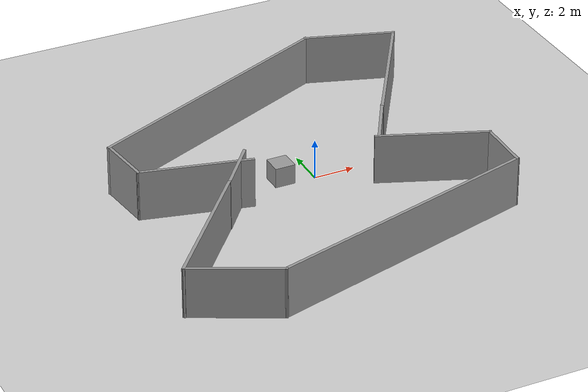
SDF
<sdf version="1.7">
 <world name="__default__">
  <gravity>0 0 -9.8</gravity>
  <magnetic_field>6e-06 2.3e-05 -4.2e-05</magnetic_field>
  <atmosphere type="adiabatic"/>
  <physics type="ode">
   <max_step_size>0.001</max_step_size>
   <real_time_factor>1</real_time_factor>
   <real_time_update_rate>1000</real_time_update_rate>
  </physics>
  <scene><ambient>0.4 0.4 0.4 1</ambient><background>0.7 0.7 0.7 1</background><shadows>1</shadows></scene>
  <audio><device>default</device></audio>
  <spherical_coordinates>
   <surface_model>EARTH_WGS84</surface_model>
   <latitude_deg>0</latitude_deg>
   <longitude_deg>0</longitude_deg>
   <elevation>0</elevation>
   <heading_deg>0</heading_deg>
  </spherical_coordinates>
  <model name="ground_plane">
   <static>1</static>
   <link name="link">
    <collision name="collision">
     <geometry><plane><normal>0 0 1</normal><size>100 100</size></plane></geometry>
     <surface>
      <contact><collide_bitmask>65535</collide_bitmask></contact>
      <friction><ode><mu>100</mu><mu2>50</mu2></ode></friction>
     </surface>
    </collision>
    <visual name="visual">
     <cast_shadows>0</cast_shadows>
     <geometry><plane><normal>0 0 1</normal><size>100 100</size></plane></geometry>
     <material>
      <script><uri>file://media/materials/scripts/gazebo.material</uri><name>Gazebo/Grey</name></script>
     </material>
    </visual>
   </link>
   <pose>-1.09019 -0.33971 0 0 -0 0</pose>
  </model>
  <light name="sun" type="directional">
   <pose>2.92909 -0.116151 10 0 -0 0</pose>
   <diffuse>0.8 0.8 0.8 1</diffuse>
   <specular>0.2 0.2 0.2 1</specular>
   <attenuation>
    <range>1000</range>
    <constant>0.9</constant>
    <linear>0.01</linear>
    <quadratic>0.001</quadratic>
   </attenuation>
   <direction>-0.5 0.1 -0.9</direction>
  </light>
  <model name="map_for_drone">
   <pose>-0.647048 3.44901 0 0 -0 0</pose>
   <link name="Wall_2">
    <collision name="Wall_2_Collision">
     <geometry><box><size>14.15 0.15 2.5</size></box></geometry>
     <pose>0 0 1.25 0 -0 0</pose>
    </collision>
    <visual name="Wall_2_Visual">
     <pose>0 0 1.25 0 -0 0</pose>
     <geometry><box><size>14.15 0.15 2.5</size></box></geometry>
     <material>
      <script><uri>file://media/materials/scripts/gazebo.material</uri><name>Gazebo/Grey</name></script>
      <ambient>1 1 1 1</ambient>
     </material>
     <meta><layer>0</layer></meta>
    </visual>
    <pose>-2.08038 2.21455 0 0 -0 0.41658</pose>
   </link>
   <link name="Wall_3">
    <collision name="Wall_3_Collision">
     <geometry><box><size>4.51692 0.15 2.5</size></box></geometry>
     <pose>0 0 1.25 0 -0 0</pose>
    </collision>
    <visual name="Wall_3_Visual">
     <pose>0 0 1.25 0 -0 0</pose>
     <geometry><box><size>4.51692 0.15 2.5</size></box></geometry>
     <material>
      <script><uri>file://media/materials/scripts/gazebo.material</uri><name>Gazebo/Grey</name></script>
      <ambient>1 1 1 1</ambient>
     </material>
     <meta><layer>0</layer></meta>
    </visual>
    <pose>6.38175 4.37744 0 0 -0 -0.311675</pose>
   </link>
   <link name="Wall_4">
    <collision name="Wall_4_Collision">
     <geometry><box><size>7.5255 0.15 2.5</size></box></geometry>
     <pose>0 0 1.25 0 -0 0</pose>
    </collision>
    <visual name="Wall_4_Visual">
     <pose>0 0 1.25 0 -0 0</pose>
     <geometry><box><size>7.5255 0.15 2.5</size></box></geometry>
     <material>
      <script><uri>file://media/materials/scripts/gazebo.material</uri><name>Gazebo/Grey</name></script>
      <ambient>1 1 1 1</ambient>
     </material>
     <meta><layer>0</layer></meta>
    </visual>
    <pose>6.54621 0.56628 0 0 -0 -2.12199</pose>
   </link>
   <link name="Wall_5">
    <collision name="Wall_5_Collision">
     <geometry><box><size>3 0.15 2.5</size></box></geometry>
     <pose>0 0 1.25 0 -0 0</pose>
    </collision>
    <visual name="Wall_5_Visual">
     <pose>0 0 1.25 0 -0 0</pose>
     <geometry><box><size>3 0.15 2.5</size></box></geometry>
     <material>
      <script><uri>file://media/materials/scripts/gazebo.material</uri><name>Gazebo/Grey</name></script>
      <ambient>1 1 1 1</ambient>
     </material>
     <meta><layer>0</layer></meta>
    </visual>
    <pose>3.87928 -3.8094 0 0 -0 -2.0944</pose>
   </link>
   <link name="Wall_7">
    <collision name="Wall_7_Collision">
     <geometry><box><size>2.80668 0.15 2.5</size></box></geometry>
     <pose>0 0 1.25 0 -0 0</pose>
    </collision>
    <visual name="Wall_7_Visual">
     <pose>0 0 1.25 0 -0 0</pose>
     <geometry><box><size>2.80668 0.15 2.5</size></box></geometry>
     <material>
      <script><uri>file://media/materials/scripts/gazebo.material</uri><name>Gazebo/Grey</name></script>
      <ambient>1 1 1 1</ambient>
     </material>
     <meta><layer>0</layer></meta>
    </visual>
    <pose>-8.31182 -1.93747 0 0 -0 -1.45579</pose>
   </link>
   <link name="Wall_8">
    <collision name="Wall_8_Collision">
     <geometry><box><size>5.46153 0.15 2.5</size></box></geometry>
     <pose>0 0 1.25 0 -0 0</pose>
    </collision>
    <visual name="Wall_8_Visual">
     <pose>0 0 1.25 0 -0 0</pose>
     <geometry><box><size>5.46153 0.15 2.5</size></box></geometry>
     <material>
      <script><uri>file://media/materials/scripts/gazebo.material</uri><name>Gazebo/Grey</name></script>
      <ambient>1 1 1 1</ambient>
     </material>
     <meta><layer>0</layer></meta>
    </visual>
    <pose>-5.59016 -3.85864 0 0 -0 -0.228511</pose>
   </link>
   <static>1</static>
  </model>
  <model name="map_for_drone_0">
   <pose>-1.27897 -5.58268 0 0 -0 2.99551</pose>
   <link name="Wall_2">
    <collision name="Wall_2_Collision">
     <geometry><box><size>14.15 0.15 2.5</size></box></geometry>
     <pose>0 0 1.25 0 -0 0</pose>
    </collision>
    <visual name="Wall_2_Visual">
     <pose>0 0 1.25 0 -0 0</pose>
     <geometry><box><size>14.15 0.15 2.5</size></box></geometry>
     <material>
      <script><uri>file://media/materials/scripts/gazebo.material</uri><name>Gazebo/Grey</name></script>
      <ambient>1 1 1 1</ambient>
     </material>
     <meta><layer>0</layer></meta>
    </visual>
    <pose>-2.08038 2.21455 0 0 -0 0.41658</pose>
   </link>
   <link name="Wall_3">
    <collision name="Wall_3_Collision">
     <geometry><box><size>4.51692 0.15 2.5</size></box></geometry>
     <pose>0 0 1.25 0 -0 0</pose>
    </collision>
    <visual name="Wall_3_Visual">
     <pose>0 0 1.25 0 -0 0</pose>
     <geometry><box><size>4.51692 0.15 2.5</size></box></geometry>
     <material>
      <script><uri>file://media/materials/scripts/gazebo.material</uri><name>Gazebo/Grey</name></script>
      <ambient>1 1 1 1</ambient>
     </material>
     <meta><layer>0</layer></meta>
    </visual>
    <pose>6.38175 4.37744 0 0 -0 -0.311675</pose>
   </link>
   <link name="Wall_4">
    <collision name="Wall_4_Collision">
     <geometry><box><size>7.5255 0.15 2.5</size></box></geometry>
     <pose>0 0 1.25 0 -0 0</pose>
    </collision>
    <visual name="Wall_4_Visual">
     <pose>0 0 1.25 0 -0 0</pose>
     <geometry><box><size>7.5255 0.15 2.5</size></box></geometry>
     <material>
      <script><uri>file://media/materials/scripts/gazebo.material</uri><name>Gazebo/Grey</name></script>
      <ambient>1 1 1 1</ambient>
     </material>
     <meta><layer>0</layer></meta>
    </visual>
    <pose>6.54621 0.56628 0 0 -0 -2.12199</pose>
   </link>
   <link name="Wall_5">
    <collision name="Wall_5_Collision">
     <geometry><box><size>3 0.15 2.5</size></box></geometry>
     <pose>0 0 1.25 0 -0 0</pose>
    </collision>
    <visual name="Wall_5_Visual">
     <pose>0 0 1.25 0 -0 0</pose>
     <geometry><box><size>3 0.15 2.5</size></box></geometry>
     <material>
      <script><uri>file://media/materials/scripts/gazebo.material</uri><name>Gazebo/Grey</name></script>
      <ambient>1 1 1 1</ambient>
     </material>
     <meta><layer>0</layer></meta>
    </visual>
    <pose>3.87928 -3.8094 0 0 -0 -2.0944</pose>
   </link>
   <link name="Wall_7">
    <collision name="Wall_7_Collision">
     <geometry><box><size>2.80668 0.15 2.5</size></box></geometry>
     <pose>0 0 1.25 0 -0 0</pose>
    </collision>
    <visual name="Wall_7_Visual">
     <pose>0 0 1.25 0 -0 0</pose>
     <geometry><box><size>2.80668 0.15 2.5</size></box></geometry>
     <material>
      <script><uri>file://media/materials/scripts/gazebo.material</uri><name>Gazebo/Grey</name></script>
      <ambient>1 1 1 1</ambient>
     </material>
     <meta><layer>0</layer></meta>
    </visual>
    <pose>-8.31182 -1.93747 0 0 -0 -1.45579</pose>
   </link>
   <link name="Wall_8">
    <collision name="Wall_8_Collision">
     <geometry><box><size>5.46153 0.15 2.5</size></box></geometry>
     <pose>0 0 1.25 0 -0 0</pose>
    </collision>
    <visual name="Wall_8_Visual">
     <pose>0 0 1.25 0 -0 0</pose>
     <geometry><box><size>5.46153 0.15 2.5</size></box></geometry>
     <material>
      <script><uri>file://media/materials/scripts/gazebo.material</uri><name>Gazebo/Grey</name></script>
      <ambient>1 1 1 1</ambient>
     </material>
     <meta><layer>0</layer></meta>
    </visual>
    <pose>-5.59016 -3.85864 0 0 -0 -0.228511</pose>
   </link>
   <static>1</static>
  </model>
  <model name="Drone">
   <link name="link_0">
    <inertial>
     <mass>1</mass>
     <inertia>
      <ixx>0.166667</ixx>
      <ixy>0</ixy>
      <ixz>0</ixz>
      <iyy>0.166667</iyy>
      <iyz>0</iyz>
      <izz>0.166667</izz>
     </inertia>
    </inertial>
    <visual name="visual">
     <geometry><box><size>1 1 1</size></box></geometry>
     <material>
      <lighting>1</lighting>
      <script><uri>file://media/materials/scripts/gazebo.material</uri><name>Gazebo/Grey</name></script>
      <shader type="pixel"/>
     </material>
    </visual>
    <collision name="collision">
     <geometry><box><size>1 1 1</size></box></geometry>
     <surface>
      <friction>
       <ode><mu>1</mu><mu2>1</mu2><fdir1>0 0 0</fdir1><slip1>0</slip1><slip2>0</slip2></ode>
       <torsional>
        <coefficient>1</coefficient>
        <patch_radius>0</patch_radius>
        <surface_radius>0</surface_radius>
        <use_patch_radius>1</use_patch_radius>
        <ode><slip>0</slip></ode>
       </torsional>
      </friction>
      <bounce><restitution_coefficient>0</restitution_coefficient><threshold>1e+06</threshold></bounce>
      <contact>
       <collide_without_contact>0</collide_without_contact>
       <collide_without_contact_bitmask>1</collide_without_contact_bitmask>
       <collide_bitmask>1</collide_bitmask>
       <ode>
        <soft_cfm>0</soft_cfm>
        <soft_erp>0.2</soft_erp>
        <kp>1e+13</kp>
        <kd>1</kd>
        <max_vel>0.01</max_vel>
        <min_depth>0</min_depth>
       </ode>
       <bullet>
        <split_impulse>1</split_impulse>
        <split_impulse_penetration_threshold>-0.01</split_impulse_penetration_threshold>
        <soft_cfm>0</soft_cfm>
        <soft_erp>0.2</soft_erp>
        <kp>1e+13</kp>
        <kd>1</kd>
       </bullet>
      </contact>
     </surface>
    </collision>
   </link>
   <static>0</static>
   <pose>-1.54809 0.463113 0.5 0 -0 0</pose>
  </model>
 </world>
</sdf>
